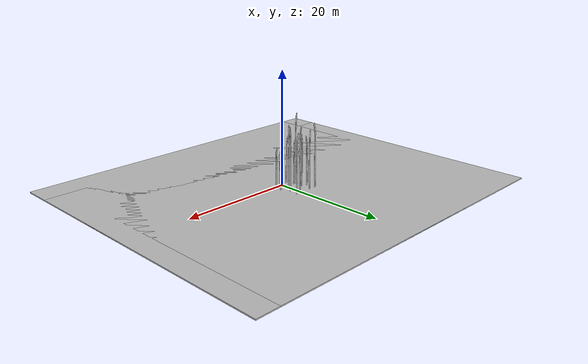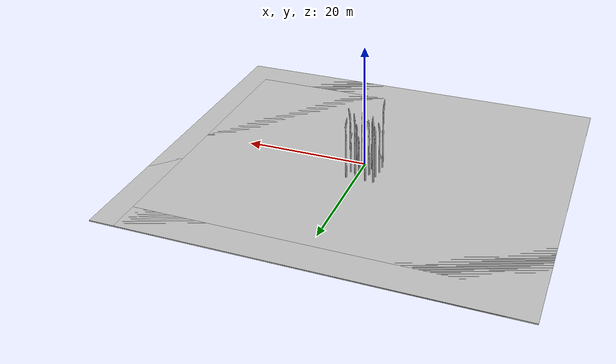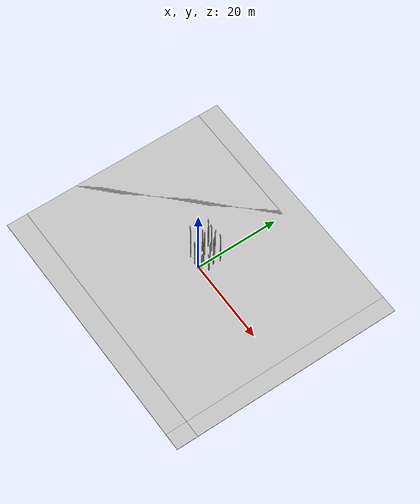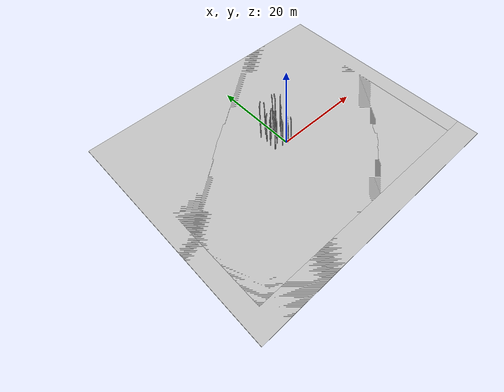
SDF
<sdf version="1.6">
 <world name="default">
  <model name="mud_box">
   <static>1</static>
   <link name="link">
    <collision name="collision"><geometry><box><size>120 100 2</size></box></geometry></collision>
    <visual name="visual_1">
     <pose>-2 2.5 0 0 -0 0</pose>
     <cast_shadows>0</cast_shadows>
     <geometry><box><size>60 50 0.2</size></box></geometry>
     <material>
      <script>
       <uri>model://mud_box/materials/scripts</uri>
       <uri>model://mud_box/materials/textures</uri>
       <name>vrc/mud</name>
      </script>
     </material>
    </visual>
    <visual name="visual_2">
     <pose>2 2.5 0 0 -0 0</pose>
     <cast_shadows>0</cast_shadows>
     <geometry><box><size>60 50 0.2</size></box></geometry>
     <material>
      <script>
       <uri>model://mud_box/materials/scripts</uri>
       <uri>model://mud_box/materials/textures</uri>
       <name>vrc/mud</name>
      </script>
     </material>
    </visual>
    <visual name="visual_3">
     <pose>2 -2.5 0 0 -0 0</pose>
     <cast_shadows>0</cast_shadows>
     <geometry><box><size>60 50 0.2</size></box></geometry>
     <material>
      <script>
       <uri>model://mud_box/materials/scripts</uri>
       <uri>model://mud_box/materials/textures</uri>
       <name>vrc/mud</name>
      </script>
     </material>
    </visual>
    <visual name="visual_4">
     <pose>-2 -2.5 0 0 -0 0</pose>
     <cast_shadows>0</cast_shadows>
     <geometry><box><size>60 50 0.2</size></box></geometry>
     <material>
      <script>
       <uri>model://mud_box/materials/scripts</uri>
       <uri>model://mud_box/materials/textures</uri>
       <name>vrc/mud</name>
      </script>
     </material>
    </visual>
   </link>
  </model>
  <model name="asparagus_31">
   <pose>-3.09188 0.178459 0 0 -0 -3.05527</pose>
   <static>1</static>
   <link name="asparagus_31">
    <visual name="visual">
     <geometry>
      <mesh><uri>model://Asparagus/meshes/asparagus.obj</uri><scale>0.3 0.3 0.589458</scale></mesh>
     </geometry>
    </visual>
    <collision name="collision">
     <geometry>
      <mesh><uri>model://Asparagus/meshes/asparagus.obj</uri><scale>0.3 0.3 0.589458</scale></mesh>
     </geometry>
    </collision>
   </link>
  </model>
  <model name="asparagus_34">
   <pose>-2.93227 1.688 0 0 -0 0.311129</pose>
   <static>1</static>
   <link name="asparagus_34">
    <visual name="visual">
     <geometry>
      <mesh><uri>model://Asparagus/meshes/asparagus.obj</uri><scale>0.3 0.3 0.430906</scale></mesh>
     </geometry>
    </visual>
    <collision name="collision">
     <geometry>
      <mesh><uri>model://Asparagus/meshes/asparagus.obj</uri><scale>0.3 0.3 0.430906</scale></mesh>
     </geometry>
    </collision>
   </link>
  </model>
  <model name="asparagus_37">
   <pose>-2.73111 3.00816 0 0 -0 -0.526085</pose>
   <static>1</static>
   <link name="asparagus_37">
    <visual name="visual">
     <geometry>
      <mesh><uri>model://Asparagus/meshes/asparagus.obj</uri><scale>0.3 0.3 0.429202</scale></mesh>
     </geometry>
    </visual>
    <collision name="collision">
     <geometry>
      <mesh><uri>model://Asparagus/meshes/asparagus.obj</uri><scale>0.3 0.3 0.429202</scale></mesh>
     </geometry>
    </collision>
   </link>
  </model>
  <model name="asparagus_40">
   <pose>-2.95805 4.64346 0 0 -0 -0.885135</pose>
   <static>1</static>
   <link name="asparagus_40">
    <visual name="visual">
     <geometry>
      <mesh><uri>model://Asparagus/meshes/asparagus.obj</uri><scale>0.3 0.3 0.549346</scale></mesh>
     </geometry>
    </visual>
    <collision name="collision">
     <geometry>
      <mesh><uri>model://Asparagus/meshes/asparagus.obj</uri><scale>0.3 0.3 0.549346</scale></mesh>
     </geometry>
    </collision>
   </link>
  </model>
  <model name="asparagus_91">
   <pose>-1.20845 -0.092758 0 0 -0 2.50799</pose>
   <static>1</static>
   <link name="asparagus_91">
    <visual name="visual">
     <geometry>
      <mesh><uri>model://Asparagus/meshes/asparagus.obj</uri><scale>0.3 0.3 0.417283</scale></mesh>
     </geometry>
    </visual>
    <collision name="collision">
     <geometry>
      <mesh><uri>model://Asparagus/meshes/asparagus.obj</uri><scale>0.3 0.3 0.417283</scale></mesh>
     </geometry>
    </collision>
   </link>
  </model>
  <model name="asparagus_94">
   <pose>-1.65563 1.21051 0 0 -0 2.12093</pose>
   <static>1</static>
   <link name="asparagus_94">
    <visual name="visual">
     <geometry>
      <mesh><uri>model://Asparagus/meshes/asparagus.obj</uri><scale>0.3 0.3 0.401195</scale></mesh>
     </geometry>
    </visual>
    <collision name="collision">
     <geometry>
      <mesh><uri>model://Asparagus/meshes/asparagus.obj</uri><scale>0.3 0.3 0.401195</scale></mesh>
     </geometry>
    </collision>
   </link>
  </model>
  <model name="asparagus_97">
   <pose>-1.65692 2.81642 0 0 -0 -0.656805</pose>
   <static>1</static>
   <link name="asparagus_97">
    <visual name="visual">
     <geometry>
      <mesh><uri>model://Asparagus/meshes/asparagus.obj</uri><scale>0.3 0.3 0.469172</scale></mesh>
     </geometry>
    </visual>
    <collision name="collision">
     <geometry>
      <mesh><uri>model://Asparagus/meshes/asparagus.obj</uri><scale>0.3 0.3 0.469172</scale></mesh>
     </geometry>
    </collision>
   </link>
  </model>
  <model name="asparagus_100">
   <pose>-1.77688 4.61834 0 0 -0 -2.64188</pose>
   <static>1</static>
   <link name="asparagus_100">
    <visual name="visual">
     <geometry>
      <mesh><uri>model://Asparagus/meshes/asparagus.obj</uri><scale>0.3 0.3 0.503886</scale></mesh>
     </geometry>
    </visual>
    <collision name="collision">
     <geometry>
      <mesh><uri>model://Asparagus/meshes/asparagus.obj</uri><scale>0.3 0.3 0.503886</scale></mesh>
     </geometry>
    </collision>
   </link>
  </model>
  <model name="asparagus_151">
   <pose>0.212199 -0.277572 0 0 -0 2.39668</pose>
   <static>1</static>
   <link name="asparagus_151">
    <visual name="visual">
     <geometry>
      <mesh><uri>model://Asparagus/meshes/asparagus.obj</uri><scale>0.3 0.3 0.312759</scale></mesh>
     </geometry>
    </visual>
    <collision name="collision">
     <geometry>
      <mesh><uri>model://Asparagus/meshes/asparagus.obj</uri><scale>0.3 0.3 0.312759</scale></mesh>
     </geometry>
    </collision>
   </link>
  </model>
  <model name="asparagus_154">
   <pose>-0.169346 1.37203 0 0 -0 -2.19251</pose>
   <static>1</static>
   <link name="asparagus_154">
    <visual name="visual">
     <geometry>
      <mesh><uri>model://Asparagus/meshes/asparagus.obj</uri><scale>0.3 0.3 0.526262</scale></mesh>
     </geometry>
    </visual>
    <collision name="collision">
     <geometry>
      <mesh><uri>model://Asparagus/meshes/asparagus.obj</uri><scale>0.3 0.3 0.526262</scale></mesh>
     </geometry>
    </collision>
   </link>
  </model>
  <model name="asparagus_157">
   <pose>-0.163264 3.26466 0 0 -0 1.24932</pose>
   <static>1</static>
   <link name="asparagus_157">
    <visual name="visual">
     <geometry>
      <mesh><uri>model://Asparagus/meshes/asparagus.obj</uri><scale>0.3 0.3 0.338402</scale></mesh>
     </geometry>
    </visual>
    <collision name="collision">
     <geometry>
      <mesh><uri>model://Asparagus/meshes/asparagus.obj</uri><scale>0.3 0.3 0.338402</scale></mesh>
     </geometry>
    </collision>
   </link>
  </model>
  <model name="asparagus_160">
   <pose>0.10745 4.24051 0 0 -0 1.54511</pose>
   <static>1</static>
   <link name="asparagus_160">
    <visual name="visual">
     <geometry>
      <mesh><uri>model://Asparagus/meshes/asparagus.obj</uri><scale>0.3 0.3 0.545653</scale></mesh>
     </geometry>
    </visual>
    <collision name="collision">
     <geometry>
      <mesh><uri>model://Asparagus/meshes/asparagus.obj</uri><scale>0.3 0.3 0.545653</scale></mesh>
     </geometry>
    </collision>
   </link>
  </model>
  <model name="asparagus_211">
   <pose>1.34788 -0.045471 0 0 -0 1.55041</pose>
   <static>1</static>
   <link name="asparagus_211">
    <visual name="visual">
     <geometry>
      <mesh><uri>model://Asparagus/meshes/asparagus.obj</uri><scale>0.3 0.3 0.342826</scale></mesh>
     </geometry>
    </visual>
    <collision name="collision">
     <geometry>
      <mesh><uri>model://Asparagus/meshes/asparagus.obj</uri><scale>0.3 0.3 0.342826</scale></mesh>
     </geometry>
    </collision>
   </link>
  </model>
  <model name="asparagus_214">
   <pose>1.73443 1.4753 0 0 -0 -3.06168</pose>
   <static>1</static>
   <link name="asparagus_214">
    <visual name="visual">
     <geometry>
      <mesh><uri>model://Asparagus/meshes/asparagus.obj</uri><scale>0.3 0.3 0.300726</scale></mesh>
     </geometry>
    </visual>
    <collision name="collision">
     <geometry>
      <mesh><uri>model://Asparagus/meshes/asparagus.obj</uri><scale>0.3 0.3 0.300726</scale></mesh>
     </geometry>
    </collision>
   </link>
  </model>
  <model name="asparagus_217">
   <pose>1.29032 3.07344 0 0 -0 0.482896</pose>
   <static>1</static>
   <link name="asparagus_217">
    <visual name="visual">
     <geometry>
      <mesh><uri>model://Asparagus/meshes/asparagus.obj</uri><scale>0.3 0.3 0.545968</scale></mesh>
     </geometry>
    </visual>
    <collision name="collision">
     <geometry>
      <mesh><uri>model://Asparagus/meshes/asparagus.obj</uri><scale>0.3 0.3 0.545968</scale></mesh>
     </geometry>
    </collision>
   </link>
  </model>
  <model name="asparagus_220">
   <pose>1.29681 4.72722 0 0 -0 3.09729</pose>
   <static>1</static>
   <link name="asparagus_220">
    <visual name="visual">
     <geometry>
      <mesh><uri>model://Asparagus/meshes/asparagus.obj</uri><scale>0.3 0.3 0.511358</scale></mesh>
     </geometry>
    </visual>
    <collision name="collision">
     <geometry>
      <mesh><uri>model://Asparagus/meshes/asparagus.obj</uri><scale>0.3 0.3 0.511358</scale></mesh>
     </geometry>
    </collision>
   </link>
  </model>
 </world>
</sdf>
